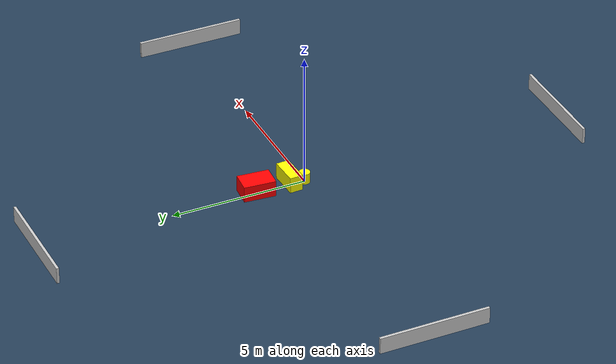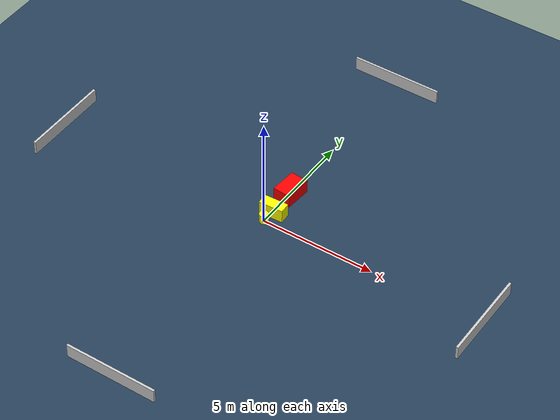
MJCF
<?xml version="1.0" ?>
<mujoco model="generated_environment">
  <option timestep="0.01" integrator="RK4" cone="elliptic"/>
  <default>
    <geom density="1"/>
  </default>
  <asset>
    <texture builtin="gradient" height="3072" name="skybox" rgb1="0.3 0.5 0.7" rgb2="0 0 0" type="skybox" width="512"/>
    <texture builtin="checker" height="300" name="groundplane" rgb1="0.2 0.3 0.4" rgb2="0.1 0.2 0.3" type="2d" width="300"/>
    <material name="groundplane" reflectance="0.2" texrepeat="5 5" texture="groundplane"/>
  </asset>
  <worldbody>
    <light dir="0 0 -1" directional="true" pos="0 0 1.5"/>
    <geom condim="3" friction="0.5 0.005 0.001" material="groundplane" name="floor" pos="0 0 0" size="0 0 0.05" type="plane"/>
    <body name="walls">
      <geom name="wall_1" condim="4" pos="-10.0 0.0 0.3" rgba="0.800000011920929 0.800000011920929 0.800000011920929 1.0" size="0.05 2.0 0.3" type="box"/>
      <geom name="wall_2" condim="4" pos="10.0 0.0 0.3" rgba="0.800000011920929 0.800000011920929 0.800000011920929 1.0" size="0.05 2.0 0.3" type="box"/>
      <geom name="wall_3" condim="4" pos="0.0 -10.0 0.3" rgba="0.800000011920929 0.800000011920929 0.800000011920929 1.0" size="2.0 0.05 0.3" type="box"/>
      <geom name="wall_4" condim="4" pos="0.0 10.0 0.3" rgba="0.800000011920929 0.800000011920929 0.800000011920929 1.0" size="2.0 0.05 0.3" type="box"/>
    </body>
    <body name="robot">
      <joint name="joint_x" type="slide" pos="0 0 0" axis="1 0 0"/>
      <joint name="joint_y" type="slide" pos="0 0 0" axis="0 1 0"/>
      <geom name="robot" type="cylinder" pos="0.0 0.0 0.2" size="0.2 0.2 0.0" mass="5.0" friction="1.0 0.005 0.0001" condim="4" rgba="1.0 1.0 0.0 1.0"/>
    </body>
    <body name="obstacle_1_movable">
      <geom name="obstacle_1_movable" condim="4" pos="0.09084094788854882 0.5361981657232925 0.3" euler="0 0 272.49598908496364" friction="0.0 0.005 0.001" rgba="1.0 1.0 0.0 1.0" size="0.2394936026924669 0.5327257704121977 0.3" type="box" mass="0.1"/>
      <joint type="free"/>
    </body>
    <body name="obstacle_2_static">
      <geom name="obstacle_2_static" condim="4" pos="0.04803257729814808 1.81534560097115 0.3" euler="0 0 355.31152976128067" friction="0.0 0.005 0.001" rgba="1.0 0.0 0.0 1.0" size="0.39341735942877004 0.5864914190776186 0.3" type="box"/>
    </body>
  </worldbody>
  <actuator>
    <motor name="actuator_x" joint="joint_x" gear="1" ctrlrange="-1 1"/>
    <motor name="actuator_y" joint="joint_y" gear="1" ctrlrange="-1 1"/>
  </actuator>
</mujoco>
